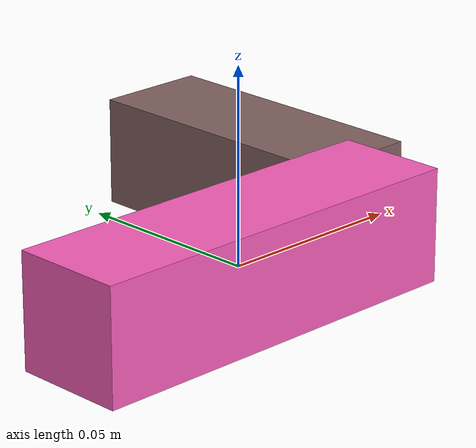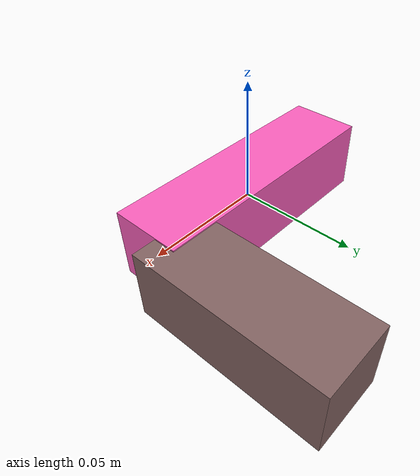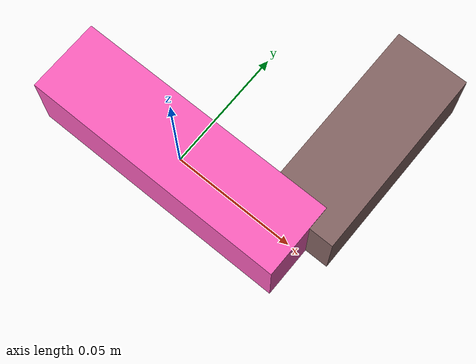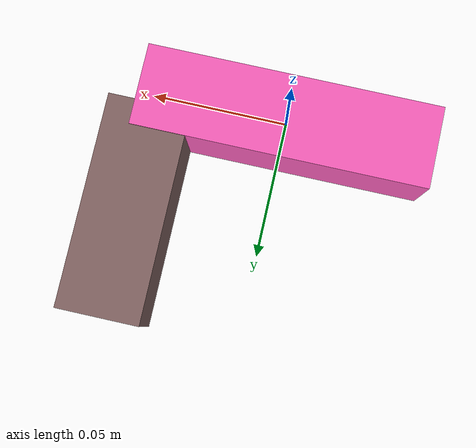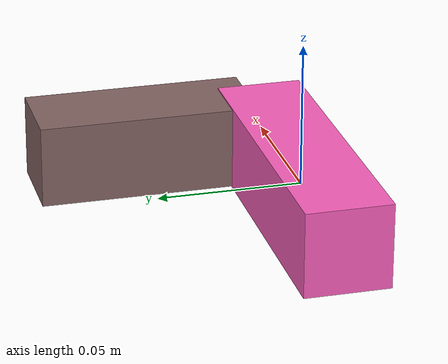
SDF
<sdf version="1.4"><world name="default"><model name="object0"><link name="link1"><pose>0 0 0 0 0 0</pose><inertial><pose>0 0 0 0 0 0</pose><mass>0.05832167104139524</mass><inertia><ixx>8.748250656209284e-06</ixx><ixy>0</ixy><iyy>6.106603822443347e-05</iyy><ixz>0</ixz><iyz>0</iyz><izz>6.106603822443347e-05</izz></inertia></inertial><visual name="link1_visual"><pose>0 0  0 0 0 0</pose><geometry><box><size>0.10800309452110231 0.03 0.03</size></box></geometry><material><diffuse>0.977091405533121 0.3723722080843534 0.7330303279856702 1</diffuse></material></visual><collision><pose>0 0  0 0 0 0</pose><geometry><box><size>0.10800309452110231 0.03 0.03</size></box></geometry></collision></link><link name="link2"><pose>0.04874587355446585 0.04443498227407906 0 0 0 0</pose><inertial><pose>0 0 0 0 0 0</pose><mass>0.04185238896515204</mass><inertia><ixx>2.3883539186901665e-05</ixx><ixy>0</ixy><iyy>6.072084099027474e-06</iyy><ixz>0</ixz><iyz>0</iyz><izz>2.4089313432646996e-05</izz></inertia></inertial><visual name="link2_visual"><pose>0 0  0 0 0 0</pose><geometry><box><size>0.03 0.07750442400954081 0.028999999999999998</size></box></geometry><material><diffuse>0.5118542331698434 0.3898808752546369 0.38492518317848634 1</diffuse></material></visual><collision><pose>0 0  0 0 0 0</pose><geometry><box><size>0.03 0.07750442400954081 0.028999999999999998</size></box></geometry></collision></link><joint name="link_joint_0" type="fixed"><parent>link1</parent><child>link2</child><pose>0 0 0 0 0 0</pose><axis><xyz>0 0 1</xyz></axis></joint></model></world></sdf>
